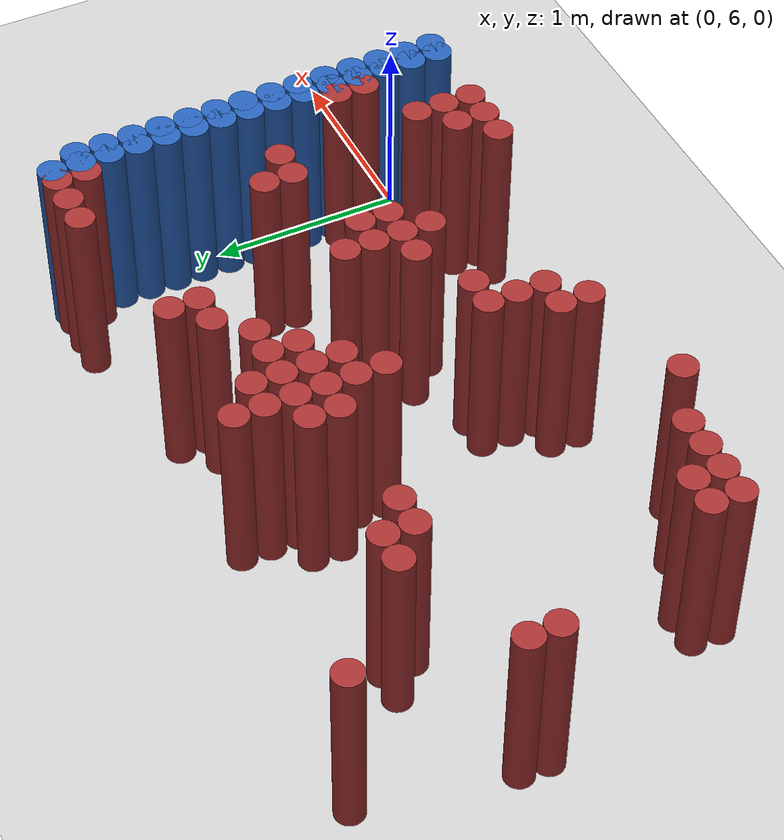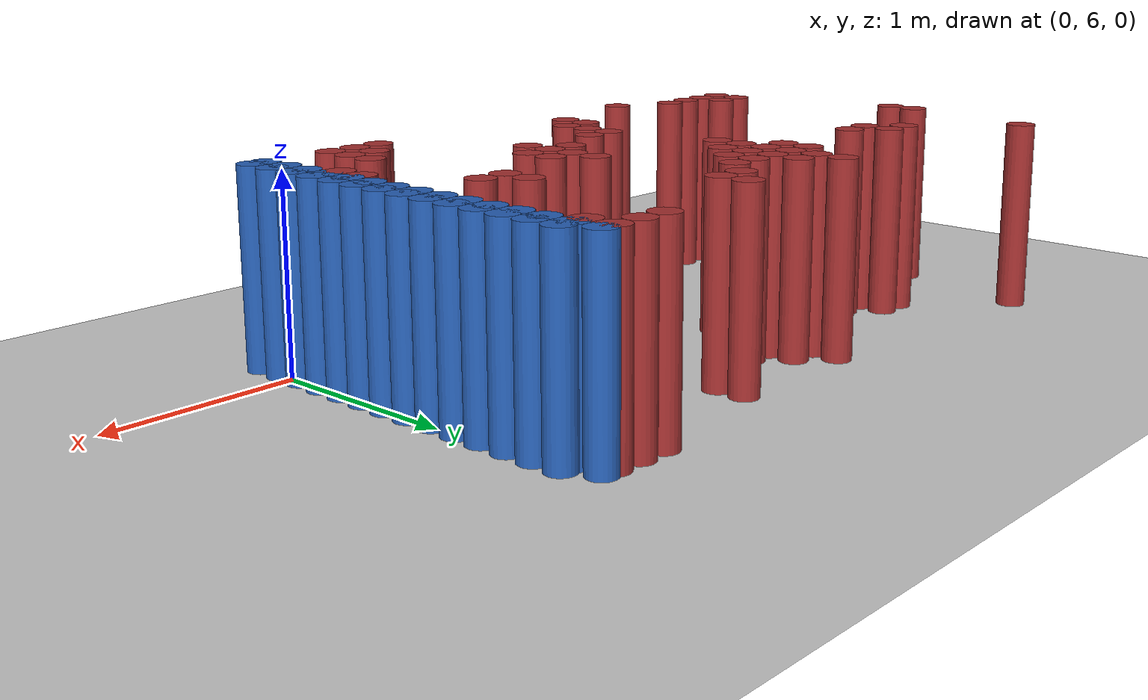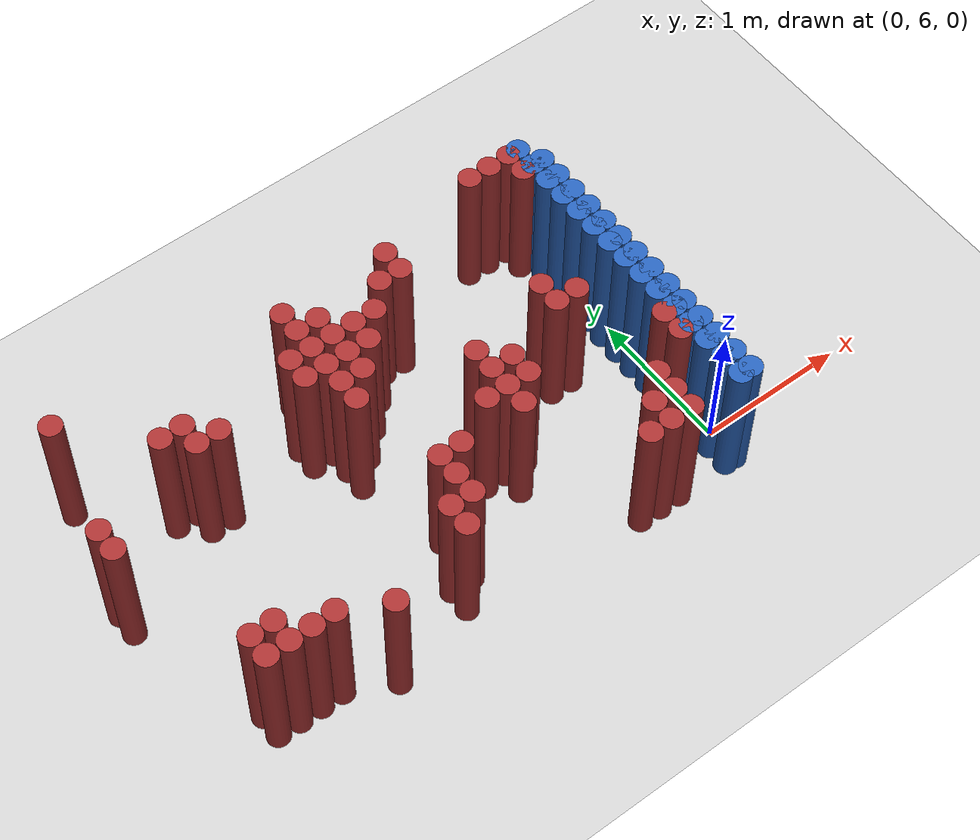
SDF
<sdf version="1.6">
 <world name="barn_world">
  <model name="ground_plane">
   <static>1</static>
   <link name="link">
    <collision name="collision">
     <geometry><plane><normal>0 0 1</normal><size>100 100</size></plane></geometry>
    </collision>
    <visual name="visual">
     <geometry><plane><normal>0 0 1</normal><size>100 100</size></plane></geometry>
     <material>
      <script><uri>file://media/materials/scripts/gazebo.material</uri><name>Gazebo/Grey</name></script>
     </material>
    </visual>
   </link>
  </model>
  <model name="unit_cylinder_207">
   <static>1</static>
   <pose>-3.6000 6.9750 0.5 0 0 0</pose>
   <link name="link">
    <collision name="collision">
     <geometry><cylinder><radius>0.075</radius><length>1</length></cylinder></geometry>
    </collision>
    <visual name="visual">
     <geometry><cylinder><radius>0.075</radius><length>1</length></cylinder></geometry>
     <material><ambient>0.648 0.192 0.192 1</ambient><diffuse>0.648 0.192 0.192 1</diffuse></material>
    </visual>
   </link>
  </model>
  <model name="unit_cylinder_208">
   <static>1</static>
   <pose>-3.6000 7.1250 0.5 0 0 0</pose>
   <link name="link">
    <collision name="collision">
     <geometry><cylinder><radius>0.075</radius><length>1</length></cylinder></geometry>
    </collision>
    <visual name="visual">
     <geometry><cylinder><radius>0.075</radius><length>1</length></cylinder></geometry>
     <material><ambient>0.648 0.192 0.192 1</ambient><diffuse>0.648 0.192 0.192 1</diffuse></material>
    </visual>
   </link>
  </model>
  <model name="unit_cylinder_215">
   <static>1</static>
   <pose>-3.4500 7.8750 0.5 0 0 0</pose>
   <link name="link">
    <collision name="collision">
     <geometry><cylinder><radius>0.075</radius><length>1</length></cylinder></geometry>
    </collision>
    <visual name="visual">
     <geometry><cylinder><radius>0.075</radius><length>1</length></cylinder></geometry>
     <material><ambient>0.648 0.192 0.192 1</ambient><diffuse>0.648 0.192 0.192 1</diffuse></material>
    </visual>
   </link>
  </model>
  <model name="unit_cylinder_223">
   <static>1</static>
   <pose>-3.3000 5.9250 0.5 0 0 0</pose>
   <link name="link">
    <collision name="collision">
     <geometry><cylinder><radius>0.075</radius><length>1</length></cylinder></geometry>
    </collision>
    <visual name="visual">
     <geometry><cylinder><radius>0.075</radius><length>1</length></cylinder></geometry>
     <material><ambient>0.648 0.192 0.192 1</ambient><diffuse>0.648 0.192 0.192 1</diffuse></material>
    </visual>
   </link>
  </model>
  <model name="unit_cylinder_224">
   <static>1</static>
   <pose>-3.3000 6.0750 0.5 0 0 0</pose>
   <link name="link">
    <collision name="collision">
     <geometry><cylinder><radius>0.075</radius><length>1</length></cylinder></geometry>
    </collision>
    <visual name="visual">
     <geometry><cylinder><radius>0.075</radius><length>1</length></cylinder></geometry>
     <material><ambient>0.648 0.192 0.192 1</ambient><diffuse>0.648 0.192 0.192 1</diffuse></material>
    </visual>
   </link>
  </model>
  <model name="unit_cylinder_232">
   <static>1</static>
   <pose>-3.1500 5.9250 0.5 0 0 0</pose>
   <link name="link">
    <collision name="collision">
     <geometry><cylinder><radius>0.075</radius><length>1</length></cylinder></geometry>
    </collision>
    <visual name="visual">
     <geometry><cylinder><radius>0.075</radius><length>1</length></cylinder></geometry>
     <material><ambient>0.648 0.192 0.192 1</ambient><diffuse>0.648 0.192 0.192 1</diffuse></material>
    </visual>
   </link>
  </model>
  <model name="unit_cylinder_233">
   <static>1</static>
   <pose>-3.1500 6.0750 0.5 0 0 0</pose>
   <link name="link">
    <collision name="collision">
     <geometry><cylinder><radius>0.075</radius><length>1</length></cylinder></geometry>
    </collision>
    <visual name="visual">
     <geometry><cylinder><radius>0.075</radius><length>1</length></cylinder></geometry>
     <material><ambient>0.648 0.192 0.192 1</ambient><diffuse>0.648 0.192 0.192 1</diffuse></material>
    </visual>
   </link>
  </model>
  <model name="unit_cylinder_240">
   <static>1</static>
   <pose>-3.0000 5.9250 0.5 0 0 0</pose>
   <link name="link">
    <collision name="collision">
     <geometry><cylinder><radius>0.075</radius><length>1</length></cylinder></geometry>
    </collision>
    <visual name="visual">
     <geometry><cylinder><radius>0.075</radius><length>1</length></cylinder></geometry>
     <material><ambient>0.648 0.192 0.192 1</ambient><diffuse>0.648 0.192 0.192 1</diffuse></material>
    </visual>
   </link>
  </model>
  <model name="unit_cylinder_241">
   <static>1</static>
   <pose>-3.0000 7.4250 0.5 0 0 0</pose>
   <link name="link">
    <collision name="collision">
     <geometry><cylinder><radius>0.075</radius><length>1</length></cylinder></geometry>
    </collision>
    <visual name="visual">
     <geometry><cylinder><radius>0.075</radius><length>1</length></cylinder></geometry>
     <material><ambient>0.648 0.192 0.192 1</ambient><diffuse>0.648 0.192 0.192 1</diffuse></material>
    </visual>
   </link>
  </model>
  <model name="unit_cylinder_246">
   <static>1</static>
   <pose>-2.8500 5.9250 0.5 0 0 0</pose>
   <link name="link">
    <collision name="collision">
     <geometry><cylinder><radius>0.075</radius><length>1</length></cylinder></geometry>
    </collision>
    <visual name="visual">
     <geometry><cylinder><radius>0.075</radius><length>1</length></cylinder></geometry>
     <material><ambient>0.648 0.192 0.192 1</ambient><diffuse>0.648 0.192 0.192 1</diffuse></material>
    </visual>
   </link>
  </model>
  <model name="unit_cylinder_247">
   <static>1</static>
   <pose>-2.8500 7.2750 0.5 0 0 0</pose>
   <link name="link">
    <collision name="collision">
     <geometry><cylinder><radius>0.075</radius><length>1</length></cylinder></geometry>
    </collision>
    <visual name="visual">
     <geometry><cylinder><radius>0.075</radius><length>1</length></cylinder></geometry>
     <material><ambient>0.648 0.192 0.192 1</ambient><diffuse>0.648 0.192 0.192 1</diffuse></material>
    </visual>
   </link>
  </model>
  <model name="unit_cylinder_248">
   <static>1</static>
   <pose>-2.8500 7.4250 0.5 0 0 0</pose>
   <link name="link">
    <collision name="collision">
     <geometry><cylinder><radius>0.075</radius><length>1</length></cylinder></geometry>
    </collision>
    <visual name="visual">
     <geometry><cylinder><radius>0.075</radius><length>1</length></cylinder></geometry>
     <material><ambient>0.648 0.192 0.192 1</ambient><diffuse>0.648 0.192 0.192 1</diffuse></material>
    </visual>
   </link>
  </model>
  <model name="unit_cylinder_252">
   <static>1</static>
   <pose>-2.7000 7.2750 0.5 0 0 0</pose>
   <link name="link">
    <collision name="collision">
     <geometry><cylinder><radius>0.075</radius><length>1</length></cylinder></geometry>
    </collision>
    <visual name="visual">
     <geometry><cylinder><radius>0.075</radius><length>1</length></cylinder></geometry>
     <material><ambient>0.648 0.192 0.192 1</ambient><diffuse>0.648 0.192 0.192 1</diffuse></material>
    </visual>
   </link>
  </model>
  <model name="unit_cylinder_254">
   <static>1</static>
   <pose>-2.5500 5.7750 0.5 0 0 0</pose>
   <link name="link">
    <collision name="collision">
     <geometry><cylinder><radius>0.075</radius><length>1</length></cylinder></geometry>
    </collision>
    <visual name="visual">
     <geometry><cylinder><radius>0.075</radius><length>1</length></cylinder></geometry>
     <material><ambient>0.648 0.192 0.192 1</ambient><diffuse>0.648 0.192 0.192 1</diffuse></material>
    </visual>
   </link>
  </model>
  <model name="unit_cylinder_260">
   <static>1</static>
   <pose>-2.1000 7.2750 0.5 0 0 0</pose>
   <link name="link">
    <collision name="collision">
     <geometry><cylinder><radius>0.075</radius><length>1</length></cylinder></geometry>
    </collision>
    <visual name="visual">
     <geometry><cylinder><radius>0.075</radius><length>1</length></cylinder></geometry>
     <material><ambient>0.648 0.192 0.192 1</ambient><diffuse>0.648 0.192 0.192 1</diffuse></material>
    </visual>
   </link>
  </model>
  <model name="unit_cylinder_261">
   <static>1</static>
   <pose>-2.1000 7.4250 0.5 0 0 0</pose>
   <link name="link">
    <collision name="collision">
     <geometry><cylinder><radius>0.075</radius><length>1</length></cylinder></geometry>
    </collision>
    <visual name="visual">
     <geometry><cylinder><radius>0.075</radius><length>1</length></cylinder></geometry>
     <material><ambient>0.648 0.192 0.192 1</ambient><diffuse>0.648 0.192 0.192 1</diffuse></material>
    </visual>
   </link>
  </model>
  <model name="unit_cylinder_262">
   <static>1</static>
   <pose>-1.9500 5.9250 0.5 0 0 0</pose>
   <link name="link">
    <collision name="collision">
     <geometry><cylinder><radius>0.075</radius><length>1</length></cylinder></geometry>
    </collision>
    <visual name="visual">
     <geometry><cylinder><radius>0.075</radius><length>1</length></cylinder></geometry>
     <material><ambient>0.648 0.192 0.192 1</ambient><diffuse>0.648 0.192 0.192 1</diffuse></material>
    </visual>
   </link>
  </model>
  <model name="unit_cylinder_263">
   <static>1</static>
   <pose>-1.9500 6.0750 0.5 0 0 0</pose>
   <link name="link">
    <collision name="collision">
     <geometry><cylinder><radius>0.075</radius><length>1</length></cylinder></geometry>
    </collision>
    <visual name="visual">
     <geometry><cylinder><radius>0.075</radius><length>1</length></cylinder></geometry>
     <material><ambient>0.648 0.192 0.192 1</ambient><diffuse>0.648 0.192 0.192 1</diffuse></material>
    </visual>
   </link>
  </model>
  <model name="unit_cylinder_264">
   <static>1</static>
   <pose>-1.9500 6.9750 0.5 0 0 0</pose>
   <link name="link">
    <collision name="collision">
     <geometry><cylinder><radius>0.075</radius><length>1</length></cylinder></geometry>
    </collision>
    <visual name="visual">
     <geometry><cylinder><radius>0.075</radius><length>1</length></cylinder></geometry>
     <material><ambient>0.648 0.192 0.192 1</ambient><diffuse>0.648 0.192 0.192 1</diffuse></material>
    </visual>
   </link>
  </model>
  <model name="unit_cylinder_265">
   <static>1</static>
   <pose>-1.9500 7.1250 0.5 0 0 0</pose>
   <link name="link">
    <collision name="collision">
     <geometry><cylinder><radius>0.075</radius><length>1</length></cylinder></geometry>
    </collision>
    <visual name="visual">
     <geometry><cylinder><radius>0.075</radius><length>1</length></cylinder></geometry>
     <material><ambient>0.648 0.192 0.192 1</ambient><diffuse>0.648 0.192 0.192 1</diffuse></material>
    </visual>
   </link>
  </model>
  <model name="unit_cylinder_266">
   <static>1</static>
   <pose>-1.9500 7.2750 0.5 0 0 0</pose>
   <link name="link">
    <collision name="collision">
     <geometry><cylinder><radius>0.075</radius><length>1</length></cylinder></geometry>
    </collision>
    <visual name="visual">
     <geometry><cylinder><radius>0.075</radius><length>1</length></cylinder></geometry>
     <material><ambient>0.648 0.192 0.192 1</ambient><diffuse>0.648 0.192 0.192 1</diffuse></material>
    </visual>
   </link>
  </model>
  <model name="unit_cylinder_267">
   <static>1</static>
   <pose>-1.9500 7.4250 0.5 0 0 0</pose>
   <link name="link">
    <collision name="collision">
     <geometry><cylinder><radius>0.075</radius><length>1</length></cylinder></geometry>
    </collision>
    <visual name="visual">
     <geometry><cylinder><radius>0.075</radius><length>1</length></cylinder></geometry>
     <material><ambient>0.648 0.192 0.192 1</ambient><diffuse>0.648 0.192 0.192 1</diffuse></material>
    </visual>
   </link>
  </model>
  <model name="unit_cylinder_268">
   <static>1</static>
   <pose>-1.9500 7.5750 0.5 0 0 0</pose>
   <link name="link">
    <collision name="collision">
     <geometry><cylinder><radius>0.075</radius><length>1</length></cylinder></geometry>
    </collision>
    <visual name="visual">
     <geometry><cylinder><radius>0.075</radius><length>1</length></cylinder></geometry>
     <material><ambient>0.648 0.192 0.192 1</ambient><diffuse>0.648 0.192 0.192 1</diffuse></material>
    </visual>
   </link>
  </model>
  <model name="unit_cylinder_269">
   <static>1</static>
   <pose>-1.9500 7.7250 0.5 0 0 0</pose>
   <link name="link">
    <collision name="collision">
     <geometry><cylinder><radius>0.075</radius><length>1</length></cylinder></geometry>
    </collision>
    <visual name="visual">
     <geometry><cylinder><radius>0.075</radius><length>1</length></cylinder></geometry>
     <material><ambient>0.648 0.192 0.192 1</ambient><diffuse>0.648 0.192 0.192 1</diffuse></material>
    </visual>
   </link>
  </model>
  <model name="unit_cylinder_270">
   <static>1</static>
   <pose>-1.8000 6.0750 0.5 0 0 0</pose>
   <link name="link">
    <collision name="collision">
     <geometry><cylinder><radius>0.075</radius><length>1</length></cylinder></geometry>
    </collision>
    <visual name="visual">
     <geometry><cylinder><radius>0.075</radius><length>1</length></cylinder></geometry>
     <material><ambient>0.648 0.192 0.192 1</ambient><diffuse>0.648 0.192 0.192 1</diffuse></material>
    </visual>
   </link>
  </model>
  <model name="unit_cylinder_271">
   <static>1</static>
   <pose>-1.8000 6.2250 0.5 0 0 0</pose>
   <link name="link">
    <collision name="collision">
     <geometry><cylinder><radius>0.075</radius><length>1</length></cylinder></geometry>
    </collision>
    <visual name="visual">
     <geometry><cylinder><radius>0.075</radius><length>1</length></cylinder></geometry>
     <material><ambient>0.648 0.192 0.192 1</ambient><diffuse>0.648 0.192 0.192 1</diffuse></material>
    </visual>
   </link>
  </model>
  <model name="unit_cylinder_272">
   <static>1</static>
   <pose>-1.8000 6.3750 0.5 0 0 0</pose>
   <link name="link">
    <collision name="collision">
     <geometry><cylinder><radius>0.075</radius><length>1</length></cylinder></geometry>
    </collision>
    <visual name="visual">
     <geometry><cylinder><radius>0.075</radius><length>1</length></cylinder></geometry>
     <material><ambient>0.648 0.192 0.192 1</ambient><diffuse>0.648 0.192 0.192 1</diffuse></material>
    </visual>
   </link>
  </model>
  <model name="unit_cylinder_273">
   <static>1</static>
   <pose>-1.8000 7.1250 0.5 0 0 0</pose>
   <link name="link">
    <collision name="collision">
     <geometry><cylinder><radius>0.075</radius><length>1</length></cylinder></geometry>
    </collision>
    <visual name="visual">
     <geometry><cylinder><radius>0.075</radius><length>1</length></cylinder></geometry>
     <material><ambient>0.648 0.192 0.192 1</ambient><diffuse>0.648 0.192 0.192 1</diffuse></material>
    </visual>
   </link>
  </model>
  <model name="unit_cylinder_274">
   <static>1</static>
   <pose>-1.8000 7.2750 0.5 0 0 0</pose>
   <link name="link">
    <collision name="collision">
     <geometry><cylinder><radius>0.075</radius><length>1</length></cylinder></geometry>
    </collision>
    <visual name="visual">
     <geometry><cylinder><radius>0.075</radius><length>1</length></cylinder></geometry>
     <material><ambient>0.648 0.192 0.192 1</ambient><diffuse>0.648 0.192 0.192 1</diffuse></material>
    </visual>
   </link>
  </model>
  <model name="unit_cylinder_275">
   <static>1</static>
   <pose>-1.8000 7.4250 0.5 0 0 0</pose>
   <link name="link">
    <collision name="collision">
     <geometry><cylinder><radius>0.075</radius><length>1</length></cylinder></geometry>
    </collision>
    <visual name="visual">
     <geometry><cylinder><radius>0.075</radius><length>1</length></cylinder></geometry>
     <material><ambient>0.648 0.192 0.192 1</ambient><diffuse>0.648 0.192 0.192 1</diffuse></material>
    </visual>
   </link>
  </model>
  <model name="unit_cylinder_276">
   <static>1</static>
   <pose>-1.8000 7.5750 0.5 0 0 0</pose>
   <link name="link">
    <collision name="collision">
     <geometry><cylinder><radius>0.075</radius><length>1</length></cylinder></geometry>
    </collision>
    <visual name="visual">
     <geometry><cylinder><radius>0.075</radius><length>1</length></cylinder></geometry>
     <material><ambient>0.648 0.192 0.192 1</ambient><diffuse>0.648 0.192 0.192 1</diffuse></material>
    </visual>
   </link>
  </model>
  <model name="unit_cylinder_278">
   <static>1</static>
   <pose>-1.6500 6.3750 0.5 0 0 0</pose>
   <link name="link">
    <collision name="collision">
     <geometry><cylinder><radius>0.075</radius><length>1</length></cylinder></geometry>
    </collision>
    <visual name="visual">
     <geometry><cylinder><radius>0.075</radius><length>1</length></cylinder></geometry>
     <material><ambient>0.648 0.192 0.192 1</ambient><diffuse>0.648 0.192 0.192 1</diffuse></material>
    </visual>
   </link>
  </model>
  <model name="unit_cylinder_279">
   <static>1</static>
   <pose>-1.6500 7.2750 0.5 0 0 0</pose>
   <link name="link">
    <collision name="collision">
     <geometry><cylinder><radius>0.075</radius><length>1</length></cylinder></geometry>
    </collision>
    <visual name="visual">
     <geometry><cylinder><radius>0.075</radius><length>1</length></cylinder></geometry>
     <material><ambient>0.648 0.192 0.192 1</ambient><diffuse>0.648 0.192 0.192 1</diffuse></material>
    </visual>
   </link>
  </model>
  <model name="unit_cylinder_280">
   <static>1</static>
   <pose>-1.6500 7.4250 0.5 0 0 0</pose>
   <link name="link">
    <collision name="collision">
     <geometry><cylinder><radius>0.075</radius><length>1</length></cylinder></geometry>
    </collision>
    <visual name="visual">
     <geometry><cylinder><radius>0.075</radius><length>1</length></cylinder></geometry>
     <material><ambient>0.648 0.192 0.192 1</ambient><diffuse>0.648 0.192 0.192 1</diffuse></material>
    </visual>
   </link>
  </model>
  <model name="unit_cylinder_283">
   <static>1</static>
   <pose>-1.5000 7.4250 0.5 0 0 0</pose>
   <link name="link">
    <collision name="collision">
     <geometry><cylinder><radius>0.075</radius><length>1</length></cylinder></geometry>
    </collision>
    <visual name="visual">
     <geometry><cylinder><radius>0.075</radius><length>1</length></cylinder></geometry>
     <material><ambient>0.648 0.192 0.192 1</ambient><diffuse>0.648 0.192 0.192 1</diffuse></material>
    </visual>
   </link>
  </model>
  <model name="unit_cylinder_285">
   <static>1</static>
   <pose>-1.3500 6.5250 0.5 0 0 0</pose>
   <link name="link">
    <collision name="collision">
     <geometry><cylinder><radius>0.075</radius><length>1</length></cylinder></geometry>
    </collision>
    <visual name="visual">
     <geometry><cylinder><radius>0.075</radius><length>1</length></cylinder></geometry>
     <material><ambient>0.648 0.192 0.192 1</ambient><diffuse>0.648 0.192 0.192 1</diffuse></material>
    </visual>
   </link>
  </model>
  <model name="unit_cylinder_286">
   <static>1</static>
   <pose>-1.3500 7.5750 0.5 0 0 0</pose>
   <link name="link">
    <collision name="collision">
     <geometry><cylinder><radius>0.075</radius><length>1</length></cylinder></geometry>
    </collision>
    <visual name="visual">
     <geometry><cylinder><radius>0.075</radius><length>1</length></cylinder></geometry>
     <material><ambient>0.648 0.192 0.192 1</ambient><diffuse>0.648 0.192 0.192 1</diffuse></material>
    </visual>
   </link>
  </model>
  <model name="unit_cylinder_287">
   <static>1</static>
   <pose>-1.2000 6.3750 0.5 0 0 0</pose>
   <link name="link">
    <collision name="collision">
     <geometry><cylinder><radius>0.075</radius><length>1</length></cylinder></geometry>
    </collision>
    <visual name="visual">
     <geometry><cylinder><radius>0.075</radius><length>1</length></cylinder></geometry>
     <material><ambient>0.648 0.192 0.192 1</ambient><diffuse>0.648 0.192 0.192 1</diffuse></material>
    </visual>
   </link>
  </model>
  <model name="unit_cylinder_288">
   <static>1</static>
   <pose>-1.2000 6.5250 0.5 0 0 0</pose>
   <link name="link">
    <collision name="collision">
     <geometry><cylinder><radius>0.075</radius><length>1</length></cylinder></geometry>
    </collision>
    <visual name="visual">
     <geometry><cylinder><radius>0.075</radius><length>1</length></cylinder></geometry>
     <material><ambient>0.648 0.192 0.192 1</ambient><diffuse>0.648 0.192 0.192 1</diffuse></material>
    </visual>
   </link>
  </model>
  <model name="unit_cylinder_289">
   <static>1</static>
   <pose>-1.2000 6.6750 0.5 0 0 0</pose>
   <link name="link">
    <collision name="collision">
     <geometry><cylinder><radius>0.075</radius><length>1</length></cylinder></geometry>
    </collision>
    <visual name="visual">
     <geometry><cylinder><radius>0.075</radius><length>1</length></cylinder></geometry>
     <material><ambient>0.648 0.192 0.192 1</ambient><diffuse>0.648 0.192 0.192 1</diffuse></material>
    </visual>
   </link>
  </model>
  <model name="unit_cylinder_290">
   <static>1</static>
   <pose>-1.2000 6.8250 0.5 0 0 0</pose>
   <link name="link">
    <collision name="collision">
     <geometry><cylinder><radius>0.075</radius><length>1</length></cylinder></geometry>
    </collision>
    <visual name="visual">
     <geometry><cylinder><radius>0.075</radius><length>1</length></cylinder></geometry>
     <material><ambient>0.648 0.192 0.192 1</ambient><diffuse>0.648 0.192 0.192 1</diffuse></material>
    </visual>
   </link>
  </model>
  <model name="unit_cylinder_291">
   <static>1</static>
   <pose>-1.2000 7.5750 0.5 0 0 0</pose>
   <link name="link">
    <collision name="collision">
     <geometry><cylinder><radius>0.075</radius><length>1</length></cylinder></geometry>
    </collision>
    <visual name="visual">
     <geometry><cylinder><radius>0.075</radius><length>1</length></cylinder></geometry>
     <material><ambient>0.648 0.192 0.192 1</ambient><diffuse>0.648 0.192 0.192 1</diffuse></material>
    </visual>
   </link>
  </model>
  <model name="unit_cylinder_292">
   <static>1</static>
   <pose>-1.2000 7.7250 0.5 0 0 0</pose>
   <link name="link">
    <collision name="collision">
     <geometry><cylinder><radius>0.075</radius><length>1</length></cylinder></geometry>
    </collision>
    <visual name="visual">
     <geometry><cylinder><radius>0.075</radius><length>1</length></cylinder></geometry>
     <material><ambient>0.648 0.192 0.192 1</ambient><diffuse>0.648 0.192 0.192 1</diffuse></material>
    </visual>
   </link>
  </model>
  <model name="unit_cylinder_293">
   <static>1</static>
   <pose>-1.0500 6.5250 0.5 0 0 0</pose>
   <link name="link">
    <collision name="collision">
     <geometry><cylinder><radius>0.075</radius><length>1</length></cylinder></geometry>
    </collision>
    <visual name="visual">
     <geometry><cylinder><radius>0.075</radius><length>1</length></cylinder></geometry>
     <material><ambient>0.648 0.192 0.192 1</ambient><diffuse>0.648 0.192 0.192 1</diffuse></material>
    </visual>
   </link>
  </model>
  <model name="unit_cylinder_294">
   <static>1</static>
   <pose>-1.0500 6.6750 0.5 0 0 0</pose>
   <link name="link">
    <collision name="collision">
     <geometry><cylinder><radius>0.075</radius><length>1</length></cylinder></geometry>
    </collision>
    <visual name="visual">
     <geometry><cylinder><radius>0.075</radius><length>1</length></cylinder></geometry>
     <material><ambient>0.648 0.192 0.192 1</ambient><diffuse>0.648 0.192 0.192 1</diffuse></material>
    </visual>
   </link>
  </model>
  <model name="unit_cylinder_303">
   <static>1</static>
   <pose>-0.7500 5.7750 0.5 0 0 0</pose>
   <link name="link">
    <collision name="collision">
     <geometry><cylinder><radius>0.075</radius><length>1</length></cylinder></geometry>
    </collision>
    <visual name="visual">
     <geometry><cylinder><radius>0.075</radius><length>1</length></cylinder></geometry>
     <material><ambient>0.648 0.192 0.192 1</ambient><diffuse>0.648 0.192 0.192 1</diffuse></material>
    </visual>
   </link>
  </model>
  <model name="unit_cylinder_306">
   <static>1</static>
   <pose>-0.6000 5.7750 0.5 0 0 0</pose>
   <link name="link">
    <collision name="collision">
     <geometry><cylinder><radius>0.075</radius><length>1</length></cylinder></geometry>
    </collision>
    <visual name="visual">
     <geometry><cylinder><radius>0.075</radius><length>1</length></cylinder></geometry>
     <material><ambient>0.648 0.192 0.192 1</ambient><diffuse>0.648 0.192 0.192 1</diffuse></material>
    </visual>
   </link>
  </model>
  <model name="unit_cylinder_307">
   <static>1</static>
   <pose>-0.6000 5.9250 0.5 0 0 0</pose>
   <link name="link">
    <collision name="collision">
     <geometry><cylinder><radius>0.075</radius><length>1</length></cylinder></geometry>
    </collision>
    <visual name="visual">
     <geometry><cylinder><radius>0.075</radius><length>1</length></cylinder></geometry>
     <material><ambient>0.648 0.192 0.192 1</ambient><diffuse>0.648 0.192 0.192 1</diffuse></material>
    </visual>
   </link>
  </model>
  <model name="unit_cylinder_308">
   <static>1</static>
   <pose>-0.6000 6.8250 0.5 0 0 0</pose>
   <link name="link">
    <collision name="collision">
     <geometry><cylinder><radius>0.075</radius><length>1</length></cylinder></geometry>
    </collision>
    <visual name="visual">
     <geometry><cylinder><radius>0.075</radius><length>1</length></cylinder></geometry>
     <material><ambient>0.648 0.192 0.192 1</ambient><diffuse>0.648 0.192 0.192 1</diffuse></material>
    </visual>
   </link>
  </model>
  <model name="unit_cylinder_309">
   <static>1</static>
   <pose>-0.6000 6.9750 0.5 0 0 0</pose>
   <link name="link">
    <collision name="collision">
     <geometry><cylinder><radius>0.075</radius><length>1</length></cylinder></geometry>
    </collision>
    <visual name="visual">
     <geometry><cylinder><radius>0.075</radius><length>1</length></cylinder></geometry>
     <material><ambient>0.648 0.192 0.192 1</ambient><diffuse>0.648 0.192 0.192 1</diffuse></material>
    </visual>
   </link>
  </model>
  <model name="unit_cylinder_312">
   <static>1</static>
   <pose>-0.4500 5.7750 0.5 0 0 0</pose>
   <link name="link">
    <collision name="collision">
     <geometry><cylinder><radius>0.075</radius><length>1</length></cylinder></geometry>
    </collision>
    <visual name="visual">
     <geometry><cylinder><radius>0.075</radius><length>1</length></cylinder></geometry>
     <material><ambient>0.648 0.192 0.192 1</ambient><diffuse>0.648 0.192 0.192 1</diffuse></material>
    </visual>
   </link>
  </model>
  <model name="unit_cylinder_313">
   <static>1</static>
   <pose>-0.4500 5.9250 0.5 0 0 0</pose>
   <link name="link">
    <collision name="collision">
     <geometry><cylinder><radius>0.075</radius><length>1</length></cylinder></geometry>
    </collision>
    <visual name="visual">
     <geometry><cylinder><radius>0.075</radius><length>1</length></cylinder></geometry>
     <material><ambient>0.648 0.192 0.192 1</ambient><diffuse>0.648 0.192 0.192 1</diffuse></material>
    </visual>
   </link>
  </model>
  <model name="unit_cylinder_314">
   <static>1</static>
   <pose>-0.4500 6.0750 0.5 0 0 0</pose>
   <link name="link">
    <collision name="collision">
     <geometry><cylinder><radius>0.075</radius><length>1</length></cylinder></geometry>
    </collision>
    <visual name="visual">
     <geometry><cylinder><radius>0.075</radius><length>1</length></cylinder></geometry>
     <material><ambient>0.648 0.192 0.192 1</ambient><diffuse>0.648 0.192 0.192 1</diffuse></material>
    </visual>
   </link>
  </model>
  <model name="unit_cylinder_315">
   <static>1</static>
   <pose>-0.4500 6.8250 0.5 0 0 0</pose>
   <link name="link">
    <collision name="collision">
     <geometry><cylinder><radius>0.075</radius><length>1</length></cylinder></geometry>
    </collision>
    <visual name="visual">
     <geometry><cylinder><radius>0.075</radius><length>1</length></cylinder></geometry>
     <material><ambient>0.648 0.192 0.192 1</ambient><diffuse>0.648 0.192 0.192 1</diffuse></material>
    </visual>
   </link>
  </model>
  <model name="unit_cylinder_316">
   <static>1</static>
   <pose>-0.4500 7.8750 0.5 0 0 0</pose>
   <link name="link">
    <collision name="collision">
     <geometry><cylinder><radius>0.075</radius><length>1</length></cylinder></geometry>
    </collision>
    <visual name="visual">
     <geometry><cylinder><radius>0.075</radius><length>1</length></cylinder></geometry>
     <material><ambient>0.648 0.192 0.192 1</ambient><diffuse>0.648 0.192 0.192 1</diffuse></material>
    </visual>
   </link>
  </model>
  <model name="unit_cylinder_319">
   <static>1</static>
   <pose>-0.3000 7.8750 0.5 0 0 0</pose>
   <link name="link">
    <collision name="collision">
     <geometry><cylinder><radius>0.075</radius><length>1</length></cylinder></geometry>
    </collision>
    <visual name="visual">
     <geometry><cylinder><radius>0.075</radius><length>1</length></cylinder></geometry>
     <material><ambient>0.648 0.192 0.192 1</ambient><diffuse>0.648 0.192 0.192 1</diffuse></material>
    </visual>
   </link>
  </model>
  <model name="unit_cylinder_322">
   <static>1</static>
   <pose>-0.1500 6.2250 0.5 0 0 0</pose>
   <link name="link">
    <collision name="collision">
     <geometry><cylinder><radius>0.075</radius><length>1</length></cylinder></geometry>
    </collision>
    <visual name="visual">
     <geometry><cylinder><radius>0.075</radius><length>1</length></cylinder></geometry>
     <material><ambient>0.648 0.192 0.192 1</ambient><diffuse>0.648 0.192 0.192 1</diffuse></material>
    </visual>
   </link>
  </model>
  <model name="unit_cylinder_323">
   <static>1</static>
   <pose>-0.1500 6.3750 0.5 0 0 0</pose>
   <link name="link">
    <collision name="collision">
     <geometry><cylinder><radius>0.075</radius><length>1</length></cylinder></geometry>
    </collision>
    <visual name="visual">
     <geometry><cylinder><radius>0.075</radius><length>1</length></cylinder></geometry>
     <material><ambient>0.648 0.192 0.192 1</ambient><diffuse>0.648 0.192 0.192 1</diffuse></material>
    </visual>
   </link>
  </model>
  <model name="unit_cylinder_324">
   <static>1</static>
   <pose>-0.1500 7.7250 0.5 0 0 0</pose>
   <link name="link">
    <collision name="collision">
     <geometry><cylinder><radius>0.075</radius><length>1</length></cylinder></geometry>
    </collision>
    <visual name="visual">
     <geometry><cylinder><radius>0.075</radius><length>1</length></cylinder></geometry>
     <material><ambient>0.648 0.192 0.192 1</ambient><diffuse>0.648 0.192 0.192 1</diffuse></material>
    </visual>
   </link>
  </model>
  <model name="unit_cylinder_325">
   <static>1</static>
   <pose>-0.1500 7.8750 0.5 0 0 0</pose>
   <link name="link">
    <collision name="collision">
     <geometry><cylinder><radius>0.075</radius><length>1</length></cylinder></geometry>
    </collision>
    <visual name="visual">
     <geometry><cylinder><radius>0.075</radius><length>1</length></cylinder></geometry>
     <material><ambient>0.648 0.192 0.192 1</ambient><diffuse>0.648 0.192 0.192 1</diffuse></material>
    </visual>
   </link>
  </model>
  <model name="unit_cylinder_334">
   <static>1</static>
   <pose>0.0000 5.7750 0.5 0 0 0</pose>
   <link name="link">
    <collision name="collision">
     <geometry><cylinder><radius>0.075</radius><length>1</length></cylinder></geometry>
    </collision>
    <visual name="visual">
     <geometry><cylinder><radius>0.075</radius><length>1</length></cylinder></geometry>
     <material><ambient>0.152 0.379 0.72 1</ambient><diffuse>0.152 0.379 0.72 1</diffuse></material>
    </visual>
   </link>
  </model>
  <model name="unit_cylinder_335">
   <static>1</static>
   <pose>0.0000 5.9250 0.5 0 0 0</pose>
   <link name="link">
    <collision name="collision">
     <geometry><cylinder><radius>0.075</radius><length>1</length></cylinder></geometry>
    </collision>
    <visual name="visual">
     <geometry><cylinder><radius>0.075</radius><length>1</length></cylinder></geometry>
     <material><ambient>0.152 0.379 0.72 1</ambient><diffuse>0.152 0.379 0.72 1</diffuse></material>
    </visual>
   </link>
  </model>
  <model name="unit_cylinder_336">
   <static>1</static>
   <pose>0.0000 6.0750 0.5 0 0 0</pose>
   <link name="link">
    <collision name="collision">
     <geometry><cylinder><radius>0.075</radius><length>1</length></cylinder></geometry>
    </collision>
    <visual name="visual">
     <geometry><cylinder><radius>0.075</radius><length>1</length></cylinder></geometry>
     <material><ambient>0.152 0.379 0.72 1</ambient><diffuse>0.152 0.379 0.72 1</diffuse></material>
    </visual>
   </link>
  </model>
  <model name="unit_cylinder_337">
   <static>1</static>
   <pose>0.0000 6.2250 0.5 0 0 0</pose>
   <link name="link">
    <collision name="collision">
     <geometry><cylinder><radius>0.075</radius><length>1</length></cylinder></geometry>
    </collision>
    <visual name="visual">
     <geometry><cylinder><radius>0.075</radius><length>1</length></cylinder></geometry>
     <material><ambient>0.152 0.379 0.72 1</ambient><diffuse>0.152 0.379 0.72 1</diffuse></material>
    </visual>
   </link>
  </model>
  <model name="unit_cylinder_338">
   <static>1</static>
   <pose>0.0000 6.3750 0.5 0 0 0</pose>
   <link name="link">
    <collision name="collision">
     <geometry><cylinder><radius>0.075</radius><length>1</length></cylinder></geometry>
    </collision>
    <visual name="visual">
     <geometry><cylinder><radius>0.075</radius><length>1</length></cylinder></geometry>
     <material><ambient>0.152 0.379 0.72 1</ambient><diffuse>0.152 0.379 0.72 1</diffuse></material>
    </visual>
   </link>
  </model>
  <model name="unit_cylinder_339">
   <static>1</static>
   <pose>0.0000 6.5250 0.5 0 0 0</pose>
   <link name="link">
    <collision name="collision">
     <geometry><cylinder><radius>0.075</radius><length>1</length></cylinder></geometry>
    </collision>
    <visual name="visual">
     <geometry><cylinder><radius>0.075</radius><length>1</length></cylinder></geometry>
     <material><ambient>0.152 0.379 0.72 1</ambient><diffuse>0.152 0.379 0.72 1</diffuse></material>
    </visual>
   </link>
  </model>
  <model name="unit_cylinder_340">
   <static>1</static>
   <pose>0.0000 6.6750 0.5 0 0 0</pose>
   <link name="link">
    <collision name="collision">
     <geometry><cylinder><radius>0.075</radius><length>1</length></cylinder></geometry>
    </collision>
    <visual name="visual">
     <geometry><cylinder><radius>0.075</radius><length>1</length></cylinder></geometry>
     <material><ambient>0.152 0.379 0.72 1</ambient><diffuse>0.152 0.379 0.72 1</diffuse></material>
    </visual>
   </link>
  </model>
  <model name="unit_cylinder_341">
   <static>1</static>
   <pose>0.0000 6.8250 0.5 0 0 0</pose>
   <link name="link">
    <collision name="collision">
     <geometry><cylinder><radius>0.075</radius><length>1</length></cylinder></geometry>
    </collision>
    <visual name="visual">
     <geometry><cylinder><radius>0.075</radius><length>1</length></cylinder></geometry>
     <material><ambient>0.152 0.379 0.72 1</ambient><diffuse>0.152 0.379 0.72 1</diffuse></material>
    </visual>
   </link>
  </model>
  <model name="unit_cylinder_342">
   <static>1</static>
   <pose>0.0000 6.9750 0.5 0 0 0</pose>
   <link name="link">
    <collision name="collision">
     <geometry><cylinder><radius>0.075</radius><length>1</length></cylinder></geometry>
    </collision>
    <visual name="visual">
     <geometry><cylinder><radius>0.075</radius><length>1</length></cylinder></geometry>
     <material><ambient>0.152 0.379 0.72 1</ambient><diffuse>0.152 0.379 0.72 1</diffuse></material>
    </visual>
   </link>
  </model>
  <model name="unit_cylinder_343">
   <static>1</static>
   <pose>0.0000 7.1250 0.5 0 0 0</pose>
   <link name="link">
    <collision name="collision">
     <geometry><cylinder><radius>0.075</radius><length>1</length></cylinder></geometry>
    </collision>
    <visual name="visual">
     <geometry><cylinder><radius>0.075</radius><length>1</length></cylinder></geometry>
     <material><ambient>0.152 0.379 0.72 1</ambient><diffuse>0.152 0.379 0.72 1</diffuse></material>
    </visual>
   </link>
  </model>
  <model name="unit_cylinder_344">
   <static>1</static>
   <pose>0.0000 7.2750 0.5 0 0 0</pose>
   <link name="link">
    <collision name="collision">
     <geometry><cylinder><radius>0.075</radius><length>1</length></cylinder></geometry>
    </collision>
    <visual name="visual">
     <geometry><cylinder><radius>0.075</radius><length>1</length></cylinder></geometry>
     <material><ambient>0.152 0.379 0.72 1</ambient><diffuse>0.152 0.379 0.72 1</diffuse></material>
    </visual>
   </link>
  </model>
  <model name="unit_cylinder_345">
   <static>1</static>
   <pose>0.0000 7.4250 0.5 0 0 0</pose>
   <link name="link">
    <collision name="collision">
     <geometry><cylinder><radius>0.075</radius><length>1</length></cylinder></geometry>
    </collision>
    <visual name="visual">
     <geometry><cylinder><radius>0.075</radius><length>1</length></cylinder></geometry>
     <material><ambient>0.152 0.379 0.72 1</ambient><diffuse>0.152 0.379 0.72 1</diffuse></material>
    </visual>
   </link>
  </model>
  <model name="unit_cylinder_346">
   <static>1</static>
   <pose>0.0000 7.5750 0.5 0 0 0</pose>
   <link name="link">
    <collision name="collision">
     <geometry><cylinder><radius>0.075</radius><length>1</length></cylinder></geometry>
    </collision>
    <visual name="visual">
     <geometry><cylinder><radius>0.075</radius><length>1</length></cylinder></geometry>
     <material><ambient>0.152 0.379 0.72 1</ambient><diffuse>0.152 0.379 0.72 1</diffuse></material>
    </visual>
   </link>
  </model>
  <model name="unit_cylinder_347">
   <static>1</static>
   <pose>0.0000 7.7250 0.5 0 0 0</pose>
   <link name="link">
    <collision name="collision">
     <geometry><cylinder><radius>0.075</radius><length>1</length></cylinder></geometry>
    </collision>
    <visual name="visual">
     <geometry><cylinder><radius>0.075</radius><length>1</length></cylinder></geometry>
     <material><ambient>0.152 0.379 0.72 1</ambient><diffuse>0.152 0.379 0.72 1</diffuse></material>
    </visual>
   </link>
  </model>
  <model name="unit_cylinder_398">
   <static>1</static>
   <pose>-0.0750 5.7750 0.5 0 0 0</pose>
   <link name="link">
    <collision name="collision">
     <geometry><cylinder><radius>0.075</radius><length>1</length></cylinder></geometry>
    </collision>
    <visual name="visual">
     <geometry><cylinder><radius>0.075</radius><length>1</length></cylinder></geometry>
     <material><ambient>0.152 0.379 0.72 1</ambient><diffuse>0.152 0.379 0.72 1</diffuse></material>
    </visual>
   </link>
  </model>
  <model name="unit_cylinder_400">
   <static>1</static>
   <pose>-0.0750 5.9250 0.5 0 0 0</pose>
   <link name="link">
    <collision name="collision">
     <geometry><cylinder><radius>0.075</radius><length>1</length></cylinder></geometry>
    </collision>
    <visual name="visual">
     <geometry><cylinder><radius>0.075</radius><length>1</length></cylinder></geometry>
     <material><ambient>0.152 0.379 0.72 1</ambient><diffuse>0.152 0.379 0.72 1</diffuse></material>
    </visual>
   </link>
  </model>
  <model name="unit_cylinder_402">
   <static>1</static>
   <pose>-0.0750 6.0750 0.5 0 0 0</pose>
   <link name="link">
    <collision name="collision">
     <geometry><cylinder><radius>0.075</radius><length>1</length></cylinder></geometry>
    </collision>
    <visual name="visual">
     <geometry><cylinder><radius>0.075</radius><length>1</length></cylinder></geometry>
     <material><ambient>0.152 0.379 0.72 1</ambient><diffuse>0.152 0.379 0.72 1</diffuse></material>
    </visual>
   </link>
  </model>
  <model name="unit_cylinder_404">
   <static>1</static>
   <pose>-0.0750 6.2250 0.5 0 0 0</pose>
   <link name="link">
    <collision name="collision">
     <geometry><cylinder><radius>0.075</radius><length>1</length></cylinder></geometry>
    </collision>
    <visual name="visual">
     <geometry><cylinder><radius>0.075</radius><length>1</length></cylinder></geometry>
     <material><ambient>0.152 0.379 0.72 1</ambient><diffuse>0.152 0.379 0.72 1</diffuse></material>
    </visual>
   </link>
  </model>
  <model name="unit_cylinder_406">
   <static>1</static>
   <pose>-0.0750 6.3750 0.5 0 0 0</pose>
   <link name="link">
    <collision name="collision">
     <geometry><cylinder><radius>0.075</radius><length>1</length></cylinder></geometry>
    </collision>
    <visual name="visual">
     <geometry><cylinder><radius>0.075</radius><length>1</length></cylinder></geometry>
     <material><ambient>0.152 0.379 0.72 1</ambient><diffuse>0.152 0.379 0.72 1</diffuse></material>
    </visual>
   </link>
  </model>
  <model name="unit_cylinder_408">
   <static>1</static>
   <pose>-0.0750 6.5250 0.5 0 0 0</pose>
   <link name="link">
    <collision name="collision">
     <geometry><cylinder><radius>0.075</radius><length>1</length></cylinder></geometry>
    </collision>
    <visual name="visual">
     <geometry><cylinder><radius>0.075</radius><length>1</length></cylinder></geometry>
     <material><ambient>0.152 0.379 0.72 1</ambient><diffuse>0.152 0.379 0.72 1</diffuse></material>
    </visual>
   </link>
  </model>
  <model name="unit_cylinder_410">
   <static>1</static>
   <pose>-0.0750 6.6750 0.5 0 0 0</pose>
   <link name="link">
    <collision name="collision">
     <geometry><cylinder><radius>0.075</radius><length>1</length></cylinder></geometry>
    </collision>
    <visual name="visual">
     <geometry><cylinder><radius>0.075</radius><length>1</length></cylinder></geometry>
     <material><ambient>0.152 0.379 0.72 1</ambient><diffuse>0.152 0.379 0.72 1</diffuse></material>
    </visual>
   </link>
  </model>
  <model name="unit_cylinder_412">
   <static>1</static>
   <pose>-0.0750 6.8250 0.5 0 0 0</pose>
   <link name="link">
    <collision name="collision">
     <geometry><cylinder><radius>0.075</radius><length>1</length></cylinder></geometry>
    </collision>
    <visual name="visual">
     <geometry><cylinder><radius>0.075</radius><length>1</length></cylinder></geometry>
     <material><ambient>0.152 0.379 0.72 1</ambient><diffuse>0.152 0.379 0.72 1</diffuse></material>
    </visual>
   </link>
  </model>
  <model name="unit_cylinder_414">
   <static>1</static>
   <pose>-0.0750 6.9750 0.5 0 0 0</pose>
   <link name="link">
    <collision name="collision">
     <geometry><cylinder><radius>0.075</radius><length>1</length></cylinder></geometry>
    </collision>
    <visual name="visual">
     <geometry><cylinder><radius>0.075</radius><length>1</length></cylinder></geometry>
     <material><ambient>0.152 0.379 0.72 1</ambient><diffuse>0.152 0.379 0.72 1</diffuse></material>
    </visual>
   </link>
  </model>
  <model name="unit_cylinder_416">
   <static>1</static>
   <pose>-0.0750 7.1250 0.5 0 0 0</pose>
   <link name="link">
    <collision name="collision">
     <geometry><cylinder><radius>0.075</radius><length>1</length></cylinder></geometry>
    </collision>
    <visual name="visual">
     <geometry><cylinder><radius>0.075</radius><length>1</length></cylinder></geometry>
     <material><ambient>0.152 0.379 0.72 1</ambient><diffuse>0.152 0.379 0.72 1</diffuse></material>
    </visual>
   </link>
  </model>
  <model name="unit_cylinder_418">
   <static>1</static>
   <pose>-0.0750 7.2750 0.5 0 0 0</pose>
   <link name="link">
    <collision name="collision">
     <geometry><cylinder><radius>0.075</radius><length>1</length></cylinder></geometry>
    </collision>
    <visual name="visual">
     <geometry><cylinder><radius>0.075</radius><length>1</length></cylinder></geometry>
     <material><ambient>0.152 0.379 0.72 1</ambient><diffuse>0.152 0.379 0.72 1</diffuse></material>
    </visual>
   </link>
  </model>
  <model name="unit_cylinder_420">
   <static>1</static>
   <pose>-0.0750 7.4250 0.5 0 0 0</pose>
   <link name="link">
    <collision name="collision">
     <geometry><cylinder><radius>0.075</radius><length>1</length></cylinder></geometry>
    </collision>
    <visual name="visual">
     <geometry><cylinder><radius>0.075</radius><length>1</length></cylinder></geometry>
     <material><ambient>0.152 0.379 0.72 1</ambient><diffuse>0.152 0.379 0.72 1</diffuse></material>
    </visual>
   </link>
  </model>
  <model name="unit_cylinder_422">
   <static>1</static>
   <pose>-0.0750 7.5750 0.5 0 0 0</pose>
   <link name="link">
    <collision name="collision">
     <geometry><cylinder><radius>0.075</radius><length>1</length></cylinder></geometry>
    </collision>
    <visual name="visual">
     <geometry><cylinder><radius>0.075</radius><length>1</length></cylinder></geometry>
     <material><ambient>0.152 0.379 0.72 1</ambient><diffuse>0.152 0.379 0.72 1</diffuse></material>
    </visual>
   </link>
  </model>
  <model name="unit_cylinder_424">
   <static>1</static>
   <pose>-0.0750 7.7250 0.5 0 0 0</pose>
   <link name="link">
    <collision name="collision">
     <geometry><cylinder><radius>0.075</radius><length>1</length></cylinder></geometry>
    </collision>
    <visual name="visual">
     <geometry><cylinder><radius>0.075</radius><length>1</length></cylinder></geometry>
     <material><ambient>0.152 0.379 0.72 1</ambient><diffuse>0.152 0.379 0.72 1</diffuse></material>
    </visual>
   </link>
  </model>
  <model name="unit_cylinder_426">
   <static>1</static>
   <pose>-0.0750 7.8750 0.5 0 0 0</pose>
   <link name="link">
    <collision name="collision">
     <geometry><cylinder><radius>0.075</radius><length>1</length></cylinder></geometry>
    </collision>
    <visual name="visual">
     <geometry><cylinder><radius>0.075</radius><length>1</length></cylinder></geometry>
     <material><ambient>0.152 0.379 0.72 1</ambient><diffuse>0.152 0.379 0.72 1</diffuse></material>
    </visual>
   </link>
  </model>
 </world>
</sdf>
